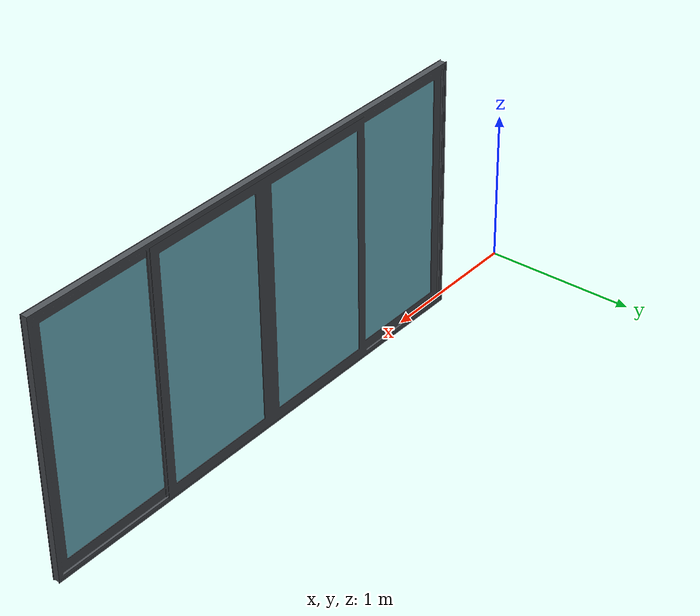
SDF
<?xml version="1.0"?>

<sdf version="1.4">
    <model name="window">
        <static>true</static>
        <link name="window_link">

            <visual name="window_mesh">
                <geometry>
                    <mesh>
                        <uri>model://window/meshes/model.dae</uri>
                    </mesh>
                </geometry>
            </visual>

            <collision name="window_collison">
                <pose>0 0 1</pose>
                <geometry>
                    <box>
                        <size>6.034290 0.105044 2.00</size>
                    </box>
                </geometry>
            </collision>
        </link>
    </model>
</sdf>
